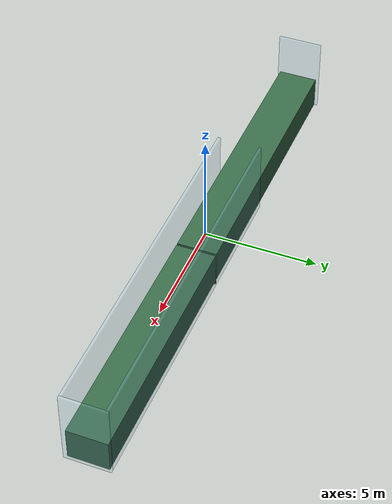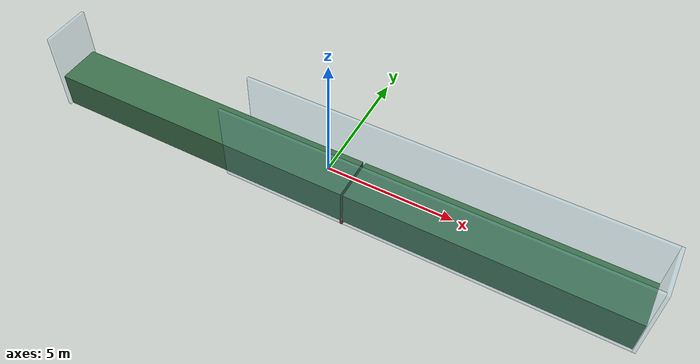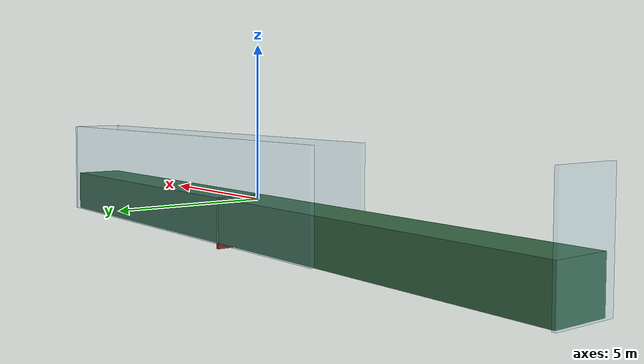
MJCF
<?xml version="1.0" encoding="utf-8"?>
<mujoco model="10cm gap 1m after spawn">
  <statistic center="4 0 0.35" extent="7"/>
  <visual><headlight diffuse="0.7 0.7 0.7" ambient="0.25 0.25 0.25"/><global azimuth="-125" elevation="-22"/></visual>
  <default><default class="course"><geom type="box" friction="0.8 0.8 0.8" priority="2" contype="1" conaffinity="1"/></default>
    <default class="guard"><geom type="box" friction="0.3 0.005 0.0001" contype="1" conaffinity="1" rgba="0.55 0.8 0.95 0.18"/></default></default>
  <worldbody>
    <light pos="4 0 8" dir="0 0 -1" directional="true"/>
    <!-- Spawn is near x=0. The gap near edge is exactly x=1.0m. -->
    <geom name="gap_start_flat" class="course" pos="-5.500 0 -0.750" size="6.500 0.900 0.750" rgba="0.22 0.42 0.28 1"/>
    <geom name="gap_10cm_bottom" class="course" pos="1.050 0 -1.600" size="0.050 0.900 0.100" rgba="0.55 0.18 0.16 1"/>
    <geom name="gap_finish_flat" class="course" pos="6.550 0 -0.750" size="5.450 0.900 0.750" rgba="0.22 0.42 0.28 1"/>
    <geom name="guard_left" class="guard" pos="4.000 0.960 0.250" size="8.000 0.060 1.750"/>
    <geom name="guard_right" class="guard" pos="4.000 -0.960 0.250" size="8.000 0.060 1.750"/>
    <geom name="guard_start" class="guard" pos="-12.060 0 0.250" size="0.060 1.020 1.750"/>
    <geom name="guard_finish" class="guard" pos="12.060 0 0.250" size="0.060 1.020 1.750"/>
  </worldbody>
  <contact>
    <pair geom1="RR" geom2="gap_start_flat"/><pair geom1="RL" geom2="gap_start_flat"/><pair geom1="FR" geom2="gap_start_flat"/><pair geom1="FL" geom2="gap_start_flat"/>
    <pair geom1="RR" geom2="gap_10cm_bottom"/><pair geom1="RL" geom2="gap_10cm_bottom"/><pair geom1="FR" geom2="gap_10cm_bottom"/><pair geom1="FL" geom2="gap_10cm_bottom"/>
    <pair geom1="RR" geom2="gap_finish_flat"/><pair geom1="RL" geom2="gap_finish_flat"/><pair geom1="FR" geom2="gap_finish_flat"/><pair geom1="FL" geom2="gap_finish_flat"/>
  </contact>
</mujoco>
